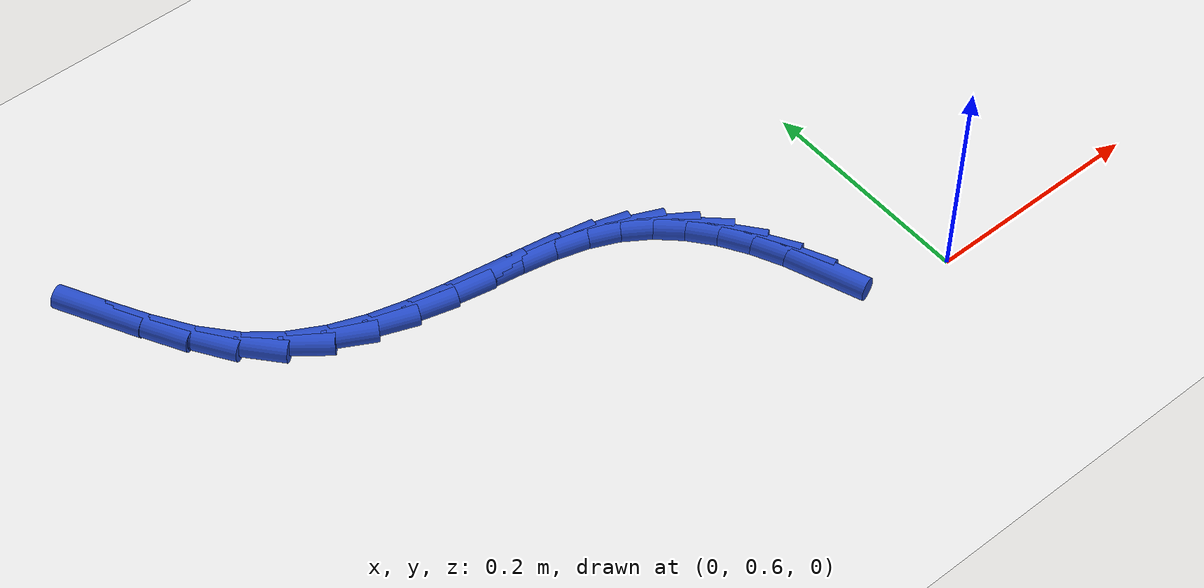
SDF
<sdf version="1.6">
 <world name="default">
  <model name="ground_plane">
   <static>1</static>
   <link name="link">
    <collision name="collision">
     <geometry><plane><normal>0 0 1</normal><size>100 100</size></plane></geometry>
     <surface><friction><ode><mu>100</mu><mu2>50</mu2></ode></friction></surface>
    </collision>
    <visual name="visual">
     <cast_shadows>0</cast_shadows>
     <geometry><plane><normal>0 0 1</normal><size>100 100</size></plane></geometry>
     <material>
      <script><uri>file://media/materials/scripts/gazebo.material</uri><name>Gazebo/WhiteGlow</name></script>
     </material>
    </visual>
   </link>
  </model>
  <model name="line">
   <link name="link_19">
    <pose>-0.09003650629054694 0.6533308563357355 0.01 0 1.57 -1.216220381780387</pose>
    <collision name="collision">
     <geometry><cylinder><radius>0.01</radius><length>0.08</length></cylinder></geometry>
    </collision>
    <visual name="visual">
     <material>
      <script><name>Gazebo/Blue</name><uri>file://media/materials/scripts/gazebo.material</uri></script>
     </material>
     <geometry><cylinder><radius>0.01</radius><length>0.08</length></cylinder></geometry>
    </visual>
   </link>
   <link name="link_20">
    <pose>-0.10112449786619233 0.6832803603627009 0.01 0 1.57 -1.130278778096658</pose>
    <collision name="collision">
     <geometry><cylinder><radius>0.01</radius><length>0.08</length></cylinder></geometry>
    </collision>
    <visual name="visual">
     <material>
      <script><name>Gazebo/Blue</name><uri>file://media/materials/scripts/gazebo.material</uri></script>
     </material>
     <geometry><cylinder><radius>0.01</radius><length>0.08</length></cylinder></geometry>
    </visual>
   </link>
   <link name="link_21">
    <pose>-0.11414702769009089 0.7109048246296306 0.01 0 1.57 -1.025213998023638</pose>
    <collision name="collision">
     <geometry><cylinder><radius>0.01</radius><length>0.08</length></cylinder></geometry>
    </collision>
    <visual name="visual">
     <material>
      <script><name>Gazebo/Blue</name><uri>file://media/materials/scripts/gazebo.material</uri></script>
     </material>
     <geometry><cylinder><radius>0.01</radius><length>0.08</length></cylinder></geometry>
    </visual>
   </link>
   <link name="link_22">
    <pose>-0.1293203786691663 0.7359003237864643 0.01 0 1.57 -0.8990926933916177</pose>
    <collision name="collision">
     <geometry><cylinder><radius>0.01</radius><length>0.08</length></cylinder></geometry>
    </collision>
    <visual name="visual">
     <material>
      <script><name>Gazebo/Blue</name><uri>file://media/materials/scripts/gazebo.material</uri></script>
     </material>
     <geometry><cylinder><radius>0.01</radius><length>0.08</length></cylinder></geometry>
    </visual>
   </link>
   <link name="link_23">
    <pose>-0.14686083371034225 0.7579629324831424 0.01 0 1.57 -0.7520841441601266</pose>
    <collision name="collision">
     <geometry><cylinder><radius>0.01</radius><length>0.08</length></cylinder></geometry>
    </collision>
    <visual name="visual">
     <material>
      <script><name>Gazebo/Blue</name><uri>file://media/materials/scripts/gazebo.material</uri></script>
     </material>
     <geometry><cylinder><radius>0.01</radius><length>0.08</length></cylinder></geometry>
    </visual>
   </link>
   <link name="link_24">
    <pose>-0.16698467572054265 0.776788725369605 0.01 0 1.57 -0.5880844573217827</pose>
    <collision name="collision">
     <geometry><cylinder><radius>0.01</radius><length>0.08</length></cylinder></geometry>
    </collision>
    <visual name="visual">
     <material>
      <script><name>Gazebo/Blue</name><uri>file://media/materials/scripts/gazebo.material</uri></script>
     </material>
     <geometry><cylinder><radius>0.01</radius><length>0.08</length></cylinder></geometry>
    </visual>
   </link>
   <link name="link_25">
    <pose>-0.18990818760669098 0.7920737770957913 0.01 0 1.57 -0.41761652139429334</pose>
    <collision name="collision">
     <geometry><cylinder><radius>0.01</radius><length>0.08</length></cylinder></geometry>
    </collision>
    <visual name="visual">
     <material>
      <script><name>Gazebo/Blue</name><uri>file://media/materials/scripts/gazebo.material</uri></script>
     </material>
     <geometry><cylinder><radius>0.01</radius><length>0.08</length></cylinder></geometry>
    </visual>
   </link>
   <link name="link_26">
    <pose>-0.2158151067154066 0.8035691116116817 0.01 0 1.57 -0.2802086820223118</pose>
    <collision name="collision">
     <geometry><cylinder><radius>0.01</radius><length>0.08</length></cylinder></geometry>
    </collision>
    <visual name="visual">
     <material>
      <script><name>Gazebo/Blue</name><uri>file://media/materials/scripts/gazebo.material</uri></script>
     </material>
     <geometry><cylinder><radius>0.01</radius><length>0.08</length></cylinder></geometry>
    </visual>
   </link>
   <link name="link_27">
    <pose>-0.2444285293893745 0.8118034903066735 0.01 0 1.57 -0.19547326191610667</pose>
    <collision name="collision">
     <geometry><cylinder><radius>0.01</radius><length>0.08</length></cylinder></geometry>
    </collision>
    <visual name="visual">
     <material>
      <script><name>Gazebo/Blue</name><uri>file://media/materials/scripts/gazebo.material</uri></script>
     </material>
     <geometry><cylinder><radius>0.01</radius><length>0.08</length></cylinder></geometry>
    </visual>
   </link>
   <link name="link_28">
    <pose>-0.27512995467354223 0.8178824208984032 0.01 0 1.57 -0.15551766078282228</pose>
    <collision name="collision">
     <geometry><cylinder><radius>0.01</radius><length>0.08</length></cylinder></geometry>
    </collision>
    <visual name="visual">
     <material>
      <script><name>Gazebo/Blue</name><uri>file://media/materials/scripts/gazebo.material</uri></script>
     </material>
     <geometry><cylinder><radius>0.01</radius><length>0.08</length></cylinder></geometry>
    </visual>
   </link>
   <link name="link_29">
    <pose>-0.3072928139791497 0.822925032342581 0.01 0 1.57 -0.15409512898195696</pose>
    <collision name="collision">
     <geometry><cylinder><radius>0.01</radius><length>0.08</length></cylinder></geometry>
    </collision>
    <visual name="visual">
     <material>
      <script><name>Gazebo/Blue</name><uri>file://media/materials/scripts/gazebo.material</uri></script>
     </material>
     <geometry><cylinder><radius>0.01</radius><length>0.08</length></cylinder></geometry>
    </visual>
   </link>
   <link name="link_30">
    <pose>-0.34029053871743736 0.8280504535949176 0.01 0 1.57 -0.18829135239080647</pose>
    <collision name="collision">
     <geometry><cylinder><radius>0.01</radius><length>0.08</length></cylinder></geometry>
    </collision>
    <visual name="visual">
     <material>
      <script><name>Gazebo/Blue</name><uri>file://media/materials/scripts/gazebo.material</uri></script>
     </material>
     <geometry><cylinder><radius>0.01</radius><length>0.08</length></cylinder></geometry>
    </visual>
   </link>
   <link name="link_31">
    <pose>-0.3734965602996452 0.8343778136111235 0.01 0 1.57 -0.2578961742604394</pose>
    <collision name="collision">
     <geometry><cylinder><radius>0.01</radius><length>0.08</length></cylinder></geometry>
    </collision>
    <visual name="visual">
     <material>
      <script><name>Gazebo/Blue</name><uri>file://media/materials/scripts/gazebo.material</uri></script>
     </material>
     <geometry><cylinder><radius>0.01</radius><length>0.08</length></cylinder></geometry>
    </visual>
   </link>
   <link name="link_32">
    <pose>-0.4062843101370137 0.8430262413469096 0.01 0 1.57 -0.3638713155943997</pose>
    <collision name="collision">
     <geometry><cylinder><radius>0.01</radius><length>0.08</length></cylinder></geometry>
    </collision>
    <visual name="visual">
     <material>
      <script><name>Gazebo/Blue</name><uri>file://media/materials/scripts/gazebo.material</uri></script>
     </material>
     <geometry><cylinder><radius>0.01</radius><length>0.08</length></cylinder></geometry>
    </visual>
   </link>
   <link name="link_33">
    <pose>-0.43802721964078284 0.8551148657579862 0.01 0 1.57 -0.5056122737413987</pose>
    <collision name="collision">
     <geometry><cylinder><radius>0.01</radius><length>0.08</length></cylinder></geometry>
    </collision>
    <visual name="visual">
     <material>
      <script><name>Gazebo/Blue</name><uri>file://media/materials/scripts/gazebo.material</uri></script>
     </material>
     <geometry><cylinder><radius>0.01</radius><length>0.08</length></cylinder></geometry>
    </visual>
   </link>
   <link name="link_34">
    <pose>-0.4680987202221928 0.8717628158000641 0.01 0 1.57 -0.6770984924806728</pose>
    <collision name="collision">
     <geometry><cylinder><radius>0.01</radius><length>0.08</length></cylinder></geometry>
    </collision>
    <visual name="visual">
     <material>
      <script><name>Gazebo/Blue</name><uri>file://media/materials/scripts/gazebo.material</uri></script>
     </material>
     <geometry><cylinder><radius>0.01</radius><length>0.08</length></cylinder></geometry>
    </visual>
   </link>
   <link name="link_35">
    <pose>-0.4958722432924839 0.894089220428854 0.01 0 1.57 -0.8607451220738295</pose>
    <collision name="collision">
     <geometry><cylinder><radius>0.01</radius><length>0.08</length></cylinder></geometry>
    </collision>
    <visual name="visual">
     <material>
      <script><name>Gazebo/Blue</name><uri>file://media/materials/scripts/gazebo.material</uri></script>
     </material>
     <geometry><cylinder><radius>0.01</radius><length>0.08</length></cylinder></geometry>
    </visual>
   </link>
   <link name="link_36">
    <pose>-0.5207690216685414 0.9230518375067694 0.01 0 1.57 -0.9967159110644279</pose>
    <collision name="collision">
     <geometry><cylinder><radius>0.01</radius><length>0.08</length></cylinder></geometry>
    </collision>
    <visual name="visual">
     <material>
      <script><name>Gazebo/Blue</name><uri>file://media/materials/scripts/gazebo.material</uri></script>
     </material>
     <geometry><cylinder><radius>0.01</radius><length>0.08</length></cylinder></geometry>
    </visual>
   </link>
   <link name="link_37">
    <pose>-0.5429018199149612 0.9572739070578841 0.01 0 1.57 -1.067725159132845</pose>
    <collision name="collision">
     <geometry><cylinder><radius>0.01</radius><length>0.08</length></cylinder></geometry>
    </collision>
    <visual name="visual">
     <material>
      <script><name>Gazebo/Blue</name><uri>file://media/materials/scripts/gazebo.material</uri></script>
     </material>
     <geometry><cylinder><radius>0.01</radius><length>0.08</length></cylinder></geometry>
    </visual>
   </link>
   <link name="link_38">
    <pose>-0.5629038690540661 0.9936216445967639 0.01 0 1.57 -1.0876493455513092</pose>
    <collision name="collision">
     <geometry><cylinder><radius>0.01</radius><length>0.08</length></cylinder></geometry>
    </collision>
    <visual name="visual">
     <material>
      <script><name>Gazebo/Blue</name><uri>file://media/materials/scripts/gazebo.material</uri></script>
     </material>
     <geometry><cylinder><radius>0.01</radius><length>0.08</length></cylinder></geometry>
    </visual>
   </link>
  </model>
 </world>
</sdf>
